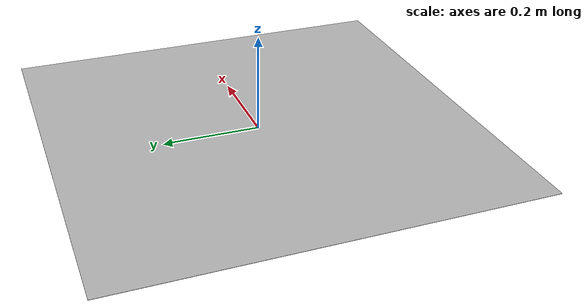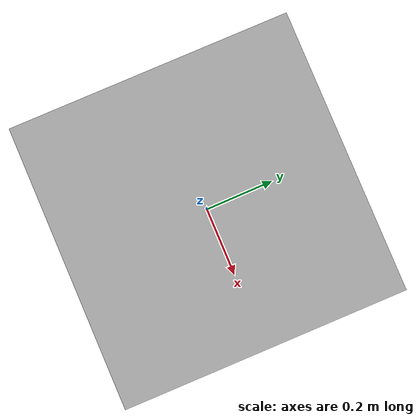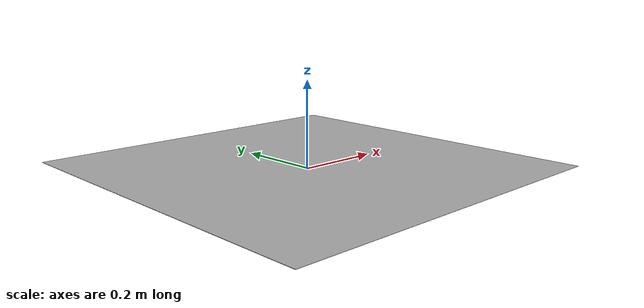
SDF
<?xml version="1.0" ?>
<sdf version="1.6">
   <model name="apriltags">
      <static>true</static>
      <pose>0 0 0.01 0 0 0</pose>
      <link name="link">
         <collision name="collision">
            <geometry>
               <plane>
                  <normal>0 0 1</normal>
                  <size>0.85 0.85</size>
               </plane>
            </geometry>
            <surface>
               <friction>
                  <ode>
                     <mu>100</mu>
                     <mu2>50</mu2>
                  </ode>
               </friction>
            </surface>
         </collision>
         <visual name="visual">
            <cast_shadows>false</cast_shadows>
            <geometry>
               <plane>
                  <normal>0 0 1</normal>
                  <size>0.85 0.85</size>
               </plane>
            </geometry>
            <material>
               <script>
                  <uri>model://apriltags/materials/scripts</uri>
                  <uri>model://apriltags/materials/textures/</uri>
                  <name>apriltags/Image</name>
               </script>
            </material>
         </visual>
      </link>
   </model>
</sdf>
